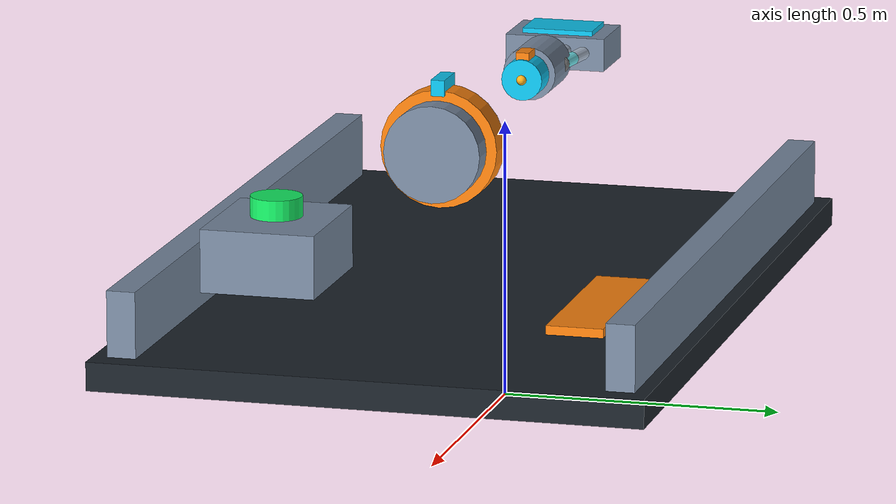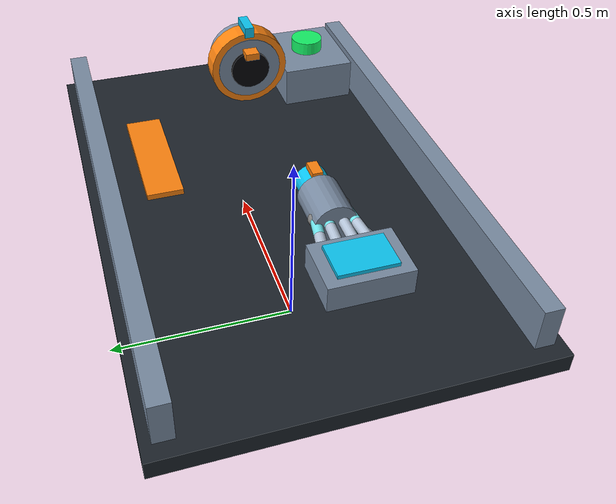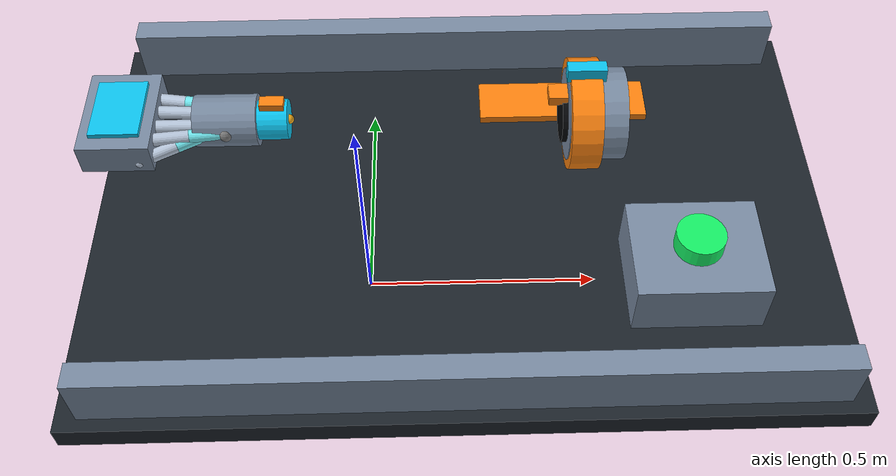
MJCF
<mujoco model="orbital_bayonet_repair">
  <compiler angle="radian" autolimits="true"/>
  <option timestep="0.002" gravity="0 0 0" integrator="implicitfast" iterations="60"/>
  <size njmax="2000" nconmax="400"/>
  <visual>
    <global offwidth="960" offheight="544"/>
    <quality shadowsize="2048"/>
  </visual>

  <default>
    <joint damping="1.2" armature="0.02"/>
    <geom condim="4" friction="0.9 0.02 0.002" solref="0.006 1" solimp="0.9 0.95 0.001"/>
    <position kp="220" kv="28" forcerange="-180 180"/>
    <default class="finger">
      <joint range="-0.15 1.35" damping="0.35" armature="0.004"/>
      <geom type="capsule" size="0.012" rgba="0.72 0.78 0.86 1"/>
      <position kp="42" kv="5" forcerange="-16 16" ctrlrange="-0.15 1.3"/>
    </default>
    <default class="visual">
      <geom contype="0" conaffinity="0" group="2"/>
    </default>
  </default>

  <asset>
    <texture name="space" type="skybox" builtin="gradient" rgb1="0.005 0.008 0.02" rgb2="0.02 0.035 0.07" width="512" height="3072"/>
    <texture name="panel" type="2d" builtin="checker" rgb1="0.09 0.11 0.14" rgb2="0.14 0.17 0.20" width="256" height="256"/>
    <material name="panel" texture="panel" texrepeat="8 4" reflectance="0.18"/>
    <material name="metal" rgba="0.48 0.55 0.64 1" metallic="0.8" roughness="0.25"/>
    <material name="cyan" rgba="0.05 0.78 0.95 1" emission="0.12"/>
    <material name="amber" rgba="1 0.52 0.06 1" emission="0.1"/>
    <material name="green" rgba="0.08 0.95 0.40 1" emission="0.25"/>
  </asset>

  <worldbody>
    <light pos="0 -1.1 1.6" dir="0.2 0.6 -1" diffuse="0.85 0.9 1"/>
    <light pos="0.7 0.8 1.0" dir="-0.4 -0.4 -0.5" diffuse="0.3 0.55 0.8"/>
    <geom name="service_panel" type="box" pos="0.20 0 0.24" size="0.74 0.48 0.025" material="panel"/>
    <geom name="panel_rail_a" type="box" pos="0.20 0.43 0.32" size="0.70 0.025 0.06" material="metal"/>
    <geom name="panel_rail_b" type="box" pos="0.20 -0.43 0.32" size="0.70 0.025 0.06" material="metal"/>
    <geom name="hazard_marker" class="visual" type="box" pos="0.43 0.28 0.285" size="0.18 0.05 0.008" material="amber"/>

    <body name="socket" pos="0.43 0 0.55">
      <geom name="socket_shell" type="cylinder" fromto="-0.035 0 0 0.07 0 0" size="0.085" material="metal" contype="0" conaffinity="0"/>
      <geom name="socket_bore" type="cylinder" fromto="-0.045 0 0 -0.025 0 0" size="0.052" rgba="0.015 0.02 0.028 1" contype="0" conaffinity="0"/>
      <geom name="socket_key" type="box" pos="-0.052 0 0.052" size="0.018 0.018 0.009" material="amber" contype="0" conaffinity="0"/>
      <site name="socket_goal" pos="-0.025 0 0" size="0.009" rgba="0.1 1 0.45 0.8"/>
      <body name="locking_collar" pos="-0.005 0 0">
        <joint name="collar_twist" type="hinge" axis="1 0 0" range="0 1.45" damping="2.5"/>
        <geom name="collar" type="cylinder" fromto="-0.028 0 0 0.028 0 0" size="0.103" material="amber" contype="0" conaffinity="0"/>
        <geom class="visual" type="box" pos="0 0 0.108" size="0.035 0.012 0.014" material="cyan"/>
      </body>
    </body>

    <body name="verify_station" pos="0.62 -0.24 0.40">
      <geom type="box" size="0.12 0.10 0.055" material="metal"/>
      <body name="verify_button" pos="0 0 0.075">
        <joint name="verify_press" type="slide" axis="0 0 -1" range="0 0.034" damping="3"/>
        <geom name="verify_button_geom" type="cylinder" size="0.045 0.018" material="green" contype="0" conaffinity="0"/>
        <site name="button_touch" type="cylinder" size="0.045 0.019" rgba="0 0 0 0"/>
      </body>
    </body>

    <body name="palm" pos="-0.42 0 0.55">
      <joint name="gantry_x" type="slide" axis="1 0 0" range="-0.15 0.68"/>
      <joint name="gantry_y" type="slide" axis="0 1 0" range="-0.32 0.32"/>
      <joint name="gantry_z" type="slide" axis="0 0 1" range="-0.20 0.28"/>
      <joint name="wrist_yaw" type="hinge" axis="0 0 1" range="-0.7 0.7"/>
      <joint name="wrist_pitch" type="hinge" axis="0 1 0" range="-0.6 0.6"/>
      <joint name="wrist_roll" type="hinge" axis="1 0 0" range="-0.9 0.9"/>
      <geom name="palm_geom" type="box" size="0.065 0.092 0.030" material="metal"/>
      <geom class="visual" type="box" pos="0 0 0.033" size="0.045 0.065 0.006" material="cyan"/>
      <site name="palm_site" size="0.012" rgba="0.1 0.9 1 1"/>

      <body name="thumb_1" pos="0.040 -0.082 -0.015" euler="0.25 0 0.42" childclass="finger">
        <joint name="thumb_base" axis="0 0 1"/>
        <geom fromto="0 0 0 0.070 0 0"/>
        <body name="thumb_2" pos="0.070 0 0">
          <joint name="thumb_tip" axis="0 0 1"/>
          <geom name="thumb_pad_geom" fromto="0 0 0 0.062 0 0" rgba="0.45 0.92 0.95 1"/>
          <site name="thumb_pad" pos="0.058 0 0" size="0.016"/>
        </body>
      </body>
      <body name="index_1" pos="0.050 -0.050 0.005" euler="0 0 0.10" childclass="finger">
        <joint name="index_base" axis="0 0 1"/>
        <geom fromto="0 0 0 0.078 0 0"/>
        <body name="index_2" pos="0.078 0 0">
          <joint name="index_tip" axis="0 0 1"/>
          <geom name="index_pad_geom" fromto="0 0 0 0.070 0 0" rgba="0.45 0.92 0.95 1"/>
          <site name="index_pad" pos="0.066 0 0" size="0.016"/>
        </body>
      </body>
      <body name="middle_1" pos="0.052 -0.017 0.005" childclass="finger">
        <joint name="middle_base" axis="0 0 1"/>
        <geom fromto="0 0 0 0.084 0 0"/>
        <body name="middle_2" pos="0.084 0 0">
          <joint name="middle_tip" axis="0 0 1"/>
          <geom name="middle_pad_geom" fromto="0 0 0 0.073 0 0" rgba="0.45 0.92 0.95 1"/>
          <site name="middle_pad" pos="0.069 0 0" size="0.016"/>
        </body>
      </body>
      <body name="ring_1" pos="0.050 0.020 0.005" euler="0 0 -0.06" childclass="finger">
        <joint name="ring_base" axis="0 0 1"/>
        <geom fromto="0 0 0 0.078 0 0"/>
        <body name="ring_2" pos="0.078 0 0">
          <joint name="ring_tip" axis="0 0 1"/>
          <geom name="ring_pad_geom" fromto="0 0 0 0.067 0 0" rgba="0.45 0.92 0.95 1"/>
          <site name="ring_pad" pos="0.063 0 0" size="0.016"/>
        </body>
      </body>
      <body name="little_1" pos="0.045 0.056 0.002" euler="0 0 -0.16" childclass="finger">
        <joint name="little_base" axis="0 0 1"/>
        <geom fromto="0 0 0 0.067 0 0"/>
        <body name="little_2" pos="0.067 0 0">
          <joint name="little_tip" axis="0 0 1"/>
          <geom name="little_pad_geom" fromto="0 0 0 0.058 0 0" rgba="0.45 0.92 0.95 1"/>
          <site name="little_pad" pos="0.054 0 0" size="0.016"/>
        </body>
      </body>
    </body>

    <body name="plug" pos="-0.24 0 0.55">
      <freejoint name="plug_free"/>
      <geom name="plug_body" type="cylinder" fromto="-0.045 0 0 0.070 0 0" size="0.048" material="metal" mass="0.28"/>
      <geom name="plug_tip" type="cylinder" fromto="0.070 0 0 0.125 0 0" size="0.037" material="cyan" mass="0.05"/>
      <geom name="plug_key" type="box" pos="0.098 0 0.041" size="0.022 0.012 0.008" material="amber" mass="0.01"/>
      <site name="plug_tip_site" pos="0.125 0 0" size="0.009" rgba="1 0.7 0.1 1"/>
      <site name="plug_grasp_site" pos="-0.005 0 0" size="0.012" rgba="0.1 1 0.5 0.5"/>
    </body>

    <camera name="judge_camera" pos="0.25 -1.22 1.08" xyaxes="1 0.18 0 -0.10 0.55 0.83" fovy="42"/>
  </worldbody>

  <contact>
    <exclude body1="palm" body2="plug"/>
    <exclude body1="palm" body2="socket"/>
  </contact>

  <equality>
    <weld name="grasp_weld" body1="palm" body2="plug" active="true" solref="0.004 1"/>
    <connect name="bayonet_latch" body1="plug" body2="socket" anchor="0.405 0 0.55" active="false" solref="0.004 1"/>
  </equality>

  <actuator>
    <position name="gantry_x_motor" joint="gantry_x" kp="340" kv="42" ctrlrange="-0.15 0.68"/>
    <position name="gantry_y_motor" joint="gantry_y" kp="340" kv="42" ctrlrange="-0.32 0.32"/>
    <position name="gantry_z_motor" joint="gantry_z" kp="340" kv="42" ctrlrange="-0.20 0.28"/>
    <position name="wrist_yaw_motor" joint="wrist_yaw" kp="110" kv="14" ctrlrange="-0.7 0.7"/>
    <position name="wrist_pitch_motor" joint="wrist_pitch" kp="110" kv="14" ctrlrange="-0.6 0.6"/>
    <position name="wrist_roll_motor" joint="wrist_roll" kp="110" kv="14" ctrlrange="-0.9 0.9"/>
    <position name="thumb_base_motor" joint="thumb_base" class="finger"/>
    <position name="thumb_tip_motor" joint="thumb_tip" class="finger"/>
    <position name="index_base_motor" joint="index_base" class="finger"/>
    <position name="index_tip_motor" joint="index_tip" class="finger"/>
    <position name="middle_base_motor" joint="middle_base" class="finger"/>
    <position name="middle_tip_motor" joint="middle_tip" class="finger"/>
    <position name="ring_base_motor" joint="ring_base" class="finger"/>
    <position name="ring_tip_motor" joint="ring_tip" class="finger"/>
    <position name="little_base_motor" joint="little_base" class="finger"/>
    <position name="little_tip_motor" joint="little_tip" class="finger"/>
    <position name="collar_motor" joint="collar_twist" kp="90" kv="12" ctrlrange="0 1.45" forcerange="-45 45"/>
    <position name="verify_motor" joint="verify_press" kp="120" kv="14" ctrlrange="0 0.034" forcerange="-40 40"/>
  </actuator>

  <sensor>
    <framepos name="palm_position" objtype="site" objname="palm_site"/>
    <framepos name="plug_position" objtype="site" objname="plug_tip_site"/>
    <framepos name="socket_position" objtype="site" objname="socket_goal"/>
    <framelinvel name="plug_velocity" objtype="body" objname="plug"/>
    <jointpos name="collar_angle" joint="collar_twist"/>
    <jointvel name="collar_speed" joint="collar_twist"/>
    <jointpos name="button_depth" joint="verify_press"/>
    <touch name="thumb_contact" site="thumb_pad"/>
    <touch name="index_contact" site="index_pad"/>
    <touch name="middle_contact" site="middle_pad"/>
    <touch name="ring_contact" site="ring_pad"/>
    <touch name="little_contact" site="little_pad"/>
    <touch name="button_contact" site="button_touch"/>
  </sensor>
</mujoco>
